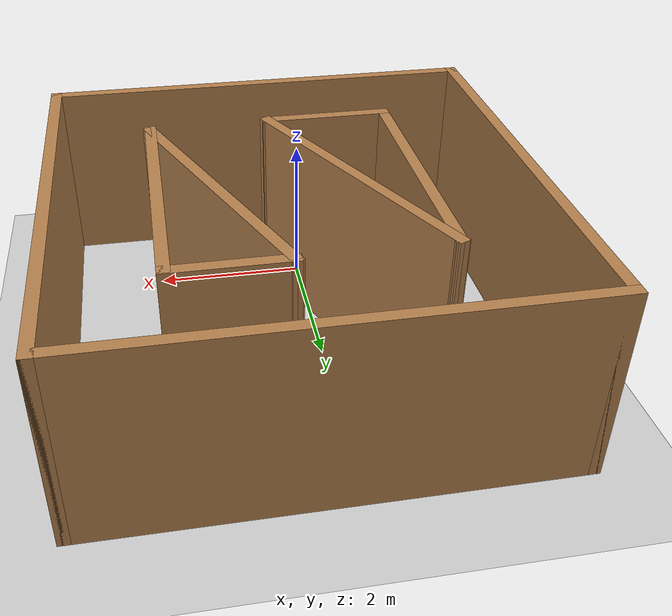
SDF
<sdf version="1.7">
 <world name="default">
  <light name="sun" type="directional">
   <pose>0 0 10 0 -0 0</pose>
   <diffuse>0.8 0.8 0.8 1</diffuse>
   <specular>0.2 0.2 0.2 1</specular>
   <attenuation>
    <range>1000</range>
    <constant>0.9</constant>
    <linear>0.01</linear>
    <quadratic>0.001</quadratic>
   </attenuation>
   <direction>-0.5 0.1 -0.9</direction>
   <spot><inner_angle>0</inner_angle><outer_angle>0</outer_angle><falloff>0</falloff></spot>
  </light>
  <model name="ground_plane">
   <static>1</static>
   <link name="link">
    <collision name="collision">
     <geometry><plane><normal>0 0 1</normal><size>100 100</size></plane></geometry>
     <surface>
      <contact><collide_bitmask>65535</collide_bitmask></contact>
      <friction><ode><mu>100</mu><mu2>50</mu2></ode></friction>
     </surface>
    </collision>
    <visual name="visual">
     <cast_shadows>0</cast_shadows>
     <geometry><plane><normal>0 0 1</normal><size>100 100</size></plane></geometry>
     <material>
      <script><uri>file://media/materials/scripts/gazebo.material</uri><name>Gazebo/Grey</name></script>
     </material>
    </visual>
   </link>
  </model>
  <gravity>0 0 -9.8</gravity>
  <magnetic_field>6e-06 2.3e-05 -4.2e-05</magnetic_field>
  <atmosphere type="adiabatic"/>
  <physics type="ode">
   <max_step_size>0.001</max_step_size>
   <real_time_factor>5</real_time_factor>
   <real_time_update_rate>5000</real_time_update_rate>
  </physics>
  <scene><ambient>0.4 0.4 0.4 1</ambient><background>0.7 0.7 0.7 1</background><shadows>1</shadows></scene>
  <spherical_coordinates>
   <surface_model>EARTH_WGS84</surface_model>
   <latitude_deg>0</latitude_deg>
   <longitude_deg>0</longitude_deg>
   <elevation>0</elevation>
   <heading_deg>0</heading_deg>
  </spherical_coordinates>
  <model name="Untitled">
   <pose>0.325 1.655 0 0 -0 0</pose>
   <link name="Wall_0">
    <collision name="Wall_0_Collision">
     <geometry><box><size>6 0.15 2.5</size></box></geometry>
     <pose>0 0 1.25 0 -0 0</pose>
    </collision>
    <visual name="Wall_0_Visual">
     <pose>0 0 1.25 0 -0 0</pose>
     <geometry><box><size>6 0.15 2.5</size></box></geometry>
     <material>
      <script><uri>file://media/materials/scripts/gazebo.material</uri><name>Gazebo/Wood</name></script>
      <ambient>1 1 1 1</ambient>
     </material>
     <meta><layer>0</layer></meta>
    </visual>
    <pose>-2.925 -0 0 0 -0 1.5708</pose>
   </link>
   <link name="Wall_1">
    <collision name="Wall_1_Collision">
     <geometry><box><size>6 0.15 2.5</size></box></geometry>
     <pose>0 0 1.25 0 -0 0</pose>
    </collision>
    <visual name="Wall_1_Visual">
     <pose>0 0 1.25 0 -0 0</pose>
     <geometry><box><size>6 0.15 2.5</size></box></geometry>
     <material>
      <script><uri>file://media/materials/scripts/gazebo.material</uri><name>Gazebo/Wood</name></script>
      <ambient>1 1 1 1</ambient>
     </material>
     <meta><layer>0</layer></meta>
    </visual>
    <pose>-0 2.925 0 0 -0 0</pose>
   </link>
   <link name="Wall_2">
    <collision name="Wall_2_Collision">
     <geometry><box><size>6 0.15 2.5</size></box></geometry>
     <pose>0 0 1.25 0 -0 0</pose>
    </collision>
    <visual name="Wall_2_Visual">
     <pose>0 0 1.25 0 -0 0</pose>
     <geometry><box><size>6 0.15 2.5</size></box></geometry>
     <material>
      <script><uri>file://media/materials/scripts/gazebo.material</uri><name>Gazebo/Wood</name></script>
      <ambient>1 1 1 1</ambient>
     </material>
     <meta><layer>0</layer></meta>
    </visual>
    <pose>2.925 -0 0 0 -0 -1.5708</pose>
   </link>
   <link name="Wall_23">
    <collision name="Wall_23_Collision">
     <geometry><box><size>3.5 0.15 2.5</size></box></geometry>
     <pose>0 0 1.25 0 -0 0</pose>
    </collision>
    <visual name="Wall_23_Visual">
     <pose>0 0 1.25 0 -0 0</pose>
     <geometry><box><size>3.5 0.15 2.5</size></box></geometry>
     <material>
      <script><uri>file://media/materials/scripts/gazebo.material</uri><name>Gazebo/Wood</name></script>
      <ambient>1 1 1 1</ambient>
     </material>
     <meta><layer>0</layer></meta>
    </visual>
    <pose>-1.52173 0.056186 0 0 -0 -1.5708</pose>
   </link>
   <link name="Wall_24">
    <collision name="Wall_24_Collision">
     <geometry><box><size>1.75 0.15 2.5</size></box></geometry>
     <pose>0 0 1.25 0 -0 0</pose>
    </collision>
    <visual name="Wall_24_Visual">
     <pose>0 0 1.25 0 -0 0</pose>
     <geometry><box><size>1.75 0.15 2.5</size></box></geometry>
     <material>
      <script><uri>file://media/materials/scripts/gazebo.material</uri><name>Gazebo/Wood</name></script>
      <ambient>1 1 1 1</ambient>
     </material>
     <meta><layer>0</layer></meta>
    </visual>
    <pose>-0.721733 -1.61881 0 0 -0 0</pose>
   </link>
   <link name="Wall_25">
    <collision name="Wall_25_Collision">
     <geometry><box><size>3.86248 0.15 2.5</size></box></geometry>
     <pose>0 0 1.25 0 -0 0</pose>
    </collision>
    <visual name="Wall_25_Visual">
     <pose>0 0 1.25 0 -0 0</pose>
     <geometry><box><size>3.86248 0.15 2.5</size></box></geometry>
     <material>
      <script><uri>file://media/materials/scripts/gazebo.material</uri><name>Gazebo/Wood</name></script>
      <ambient>1 1 1 1</ambient>
     </material>
     <meta><layer>0</layer></meta>
    </visual>
    <pose>-0.721733 0.056186 0 0 -0 2.01637</pose>
   </link>
   <link name="Wall_28">
    <collision name="Wall_28_Collision">
     <geometry><box><size>1.51235 0.15 2.5</size></box></geometry>
     <pose>0 0 1.25 0 -0 0</pose>
    </collision>
    <visual name="Wall_28_Visual">
     <pose>0 0 1.25 0 -0 0</pose>
     <geometry><box><size>1.51235 0.15 2.5</size></box></geometry>
     <material>
      <script><uri>file://media/materials/scripts/gazebo.material</uri><name>Gazebo/Wood</name></script>
      <ambient>1 1 1 1</ambient>
     </material>
     <meta><layer>0</layer></meta>
    </visual>
    <pose>0.969284 1.79202 0 0 -0 0</pose>
   </link>
   <link name="Wall_29">
    <collision name="Wall_29_Collision">
     <geometry><box><size>3.5 0.15 2.5</size></box></geometry>
     <pose>0 0 1.25 0 -0 0</pose>
    </collision>
    <visual name="Wall_29_Visual">
     <pose>0 0 1.25 0 -0 0</pose>
     <geometry><box><size>3.5 0.15 2.5</size></box></geometry>
     <material>
      <script><uri>file://media/materials/scripts/gazebo.material</uri><name>Gazebo/Wood</name></script>
      <ambient>1 1 1 1</ambient>
     </material>
     <meta><layer>0</layer></meta>
    </visual>
    <pose>1.65046 0.099531 0 0 -0 -1.5708</pose>
   </link>
   <link name="Wall_3">
    <collision name="Wall_3_Collision">
     <geometry><box><size>6 0.15 2.5</size></box></geometry>
     <pose>0 0 1.25 0 -0 0</pose>
    </collision>
    <visual name="Wall_3_Visual">
     <pose>0 0 1.25 0 -0 0</pose>
     <geometry><box><size>6 0.15 2.5</size></box></geometry>
     <material>
      <script><uri>file://media/materials/scripts/gazebo.material</uri><name>Gazebo/Wood</name></script>
      <ambient>1 1 1 1</ambient>
     </material>
     <meta><layer>0</layer></meta>
    </visual>
    <pose>-0 -2.925 0 0 -0 3.14159</pose>
   </link>
   <link name="Wall_30">
    <collision name="Wall_30_Collision">
     <geometry><box><size>3.76642 0.15 2.5</size></box></geometry>
     <pose>0 0 1.25 0 -0 0</pose>
    </collision>
    <visual name="Wall_30_Visual">
     <pose>0 0 1.25 0 -0 0</pose>
     <geometry><box><size>3.76642 0.15 2.5</size></box></geometry>
     <material>
      <script><uri>file://media/materials/scripts/gazebo.material</uri><name>Gazebo/Wood</name></script>
      <ambient>1 1 1 1</ambient>
     </material>
     <meta><layer>0</layer></meta>
    </visual>
    <pose>0.969284 0.117021 0 0 -0 1.95704</pose>
   </link>
   <static>1</static>
  </model>
 </world>
</sdf>
